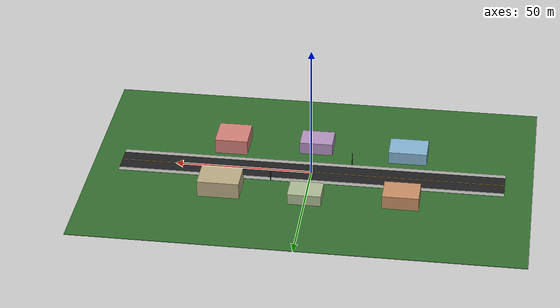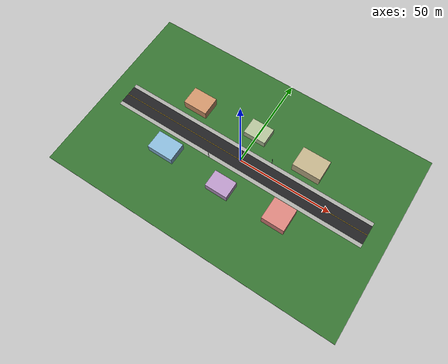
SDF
<?xml version="1.0"?>
<sdf version="1.9">
  <world name="aethon_residential">
    <!-- Keep PX4's validated world-level sensor references and timing. -->
    <physics name="ode" type="ode">
      <max_step_size>0.004</max_step_size>
      <real_time_factor>1.0</real_time_factor>
      <real_time_update_rate>250</real_time_update_rate>
    </physics>
    <gravity>0 0 -9.8</gravity>
    <magnetic_field>6e-06 2.3e-05 -4.2e-05</magnetic_field>
    <atmosphere type="adiabatic"/>
    <scene>
      <grid>false</grid>
      <ambient>0.45 0.45 0.45 1</ambient>
      <background>0.55 0.72 0.92 1</background>
      <shadows>true</shadows>
    </scene>
    <light name="sun" type="directional">
      <pose>0 0 25 0 0 0</pose>
      <cast_shadows>true</cast_shadows>
      <diffuse>0.9 0.9 0.85 1</diffuse>
      <specular>0.2 0.2 0.2 1</specular>
      <direction>-0.4 0.2 -0.9</direction>
    </light>

    <model name="ground">
      <static>true</static>
      <link name="link">
        <collision name="collision"><pose>0 0 -0.1 0 0 0</pose><geometry><box><size>160 100 0.2</size></box></geometry></collision>
        <visual name="visual"><pose>0 0 -0.1 0 0 0</pose><geometry><box><size>160 100 0.2</size></box></geometry><material><diffuse>0.20 0.43 0.18 1</diffuse></material></visual>
      </link>
    </model>
    <model name="residential_road">
      <static>true</static>
      <link name="link">
        <collision name="collision"><pose>0 0 0.01 0 0 0</pose><geometry><box><size>140 10 0.04</size></box></geometry></collision>
        <visual name="visual"><pose>0 0 0.01 0 0 0</pose><geometry><box><size>140 10 0.04</size></box></geometry><material><diffuse>0.12 0.12 0.13 1</diffuse></material></visual>
      </link>
    </model>
    <model name="north_sidewalk"><static>true</static><link name="link"><visual name="visual"><pose>0 6 0.03 0 0 0</pose><geometry><box><size>140 2 0.05</size></box></geometry><material><diffuse>0.65 0.65 0.63 1</diffuse></material></visual></link></model>
    <model name="south_sidewalk"><static>true</static><link name="link"><visual name="visual"><pose>0 -6 0.03 0 0 0</pose><geometry><box><size>140 2 0.05</size></box></geometry><material><diffuse>0.65 0.65 0.63 1</diffuse></material></visual></link></model>
    <model name="centre_line"><static>true</static><link name="link"><visual name="visual"><pose>0 0 0.04 0 0 0</pose><geometry><box><size>140 0.18 0.02</size></box></geometry><material><diffuse>0.95 0.72 0.10 1</diffuse></material></visual></link></model>

    <model name="house_northwest"><pose>-34 15 2.5 0 0 0</pose><static>true</static><link name="link"><collision name="collision"><geometry><box><size>13 10 5</size></box></geometry></collision><visual name="visual"><geometry><box><size>13 10 5</size></box></geometry><material><diffuse>0.78 0.56 0.40 1</diffuse></material></visual></link></model>
    <model name="house_northeast"><pose>31 15 3 0 0 0</pose><static>true</static><link name="link"><collision name="collision"><geometry><box><size>15 11 6</size></box></geometry></collision><visual name="visual"><geometry><box><size>15 11 6</size></box></geometry><material><diffuse>0.73 0.67 0.52 1</diffuse></material></visual></link></model>
    <model name="house_southwest"><pose>-34 -15 2.25 0 0 0</pose><static>true</static><link name="link"><collision name="collision"><geometry><box><size>14 10 4.5</size></box></geometry></collision><visual name="visual"><geometry><box><size>14 10 4.5</size></box></geometry><material><diffuse>0.52 0.70 0.82 1</diffuse></material></visual></link></model>
    <model name="house_southeast"><pose>31 -15 2.75 0 0 0</pose><static>true</static><link name="link"><collision name="collision"><geometry><box><size>12 12 5.5</size></box></geometry></collision><visual name="visual"><geometry><box><size>12 12 5.5</size></box></geometry><material><diffuse>0.82 0.50 0.47 1</diffuse></material></visual></link></model>
    <model name="house_north_far"><pose>0 17 2 0 0 0</pose><static>true</static><link name="link"><collision name="collision"><geometry><box><size>12 9 4</size></box></geometry></collision><visual name="visual"><geometry><box><size>12 9 4</size></box></geometry><material><diffuse>0.68 0.73 0.58 1</diffuse></material></visual></link></model>
    <model name="house_south_far"><pose>0 -17 2.25 0 0 0</pose><static>true</static><link name="link"><collision name="collision"><geometry><box><size>12 9 4.5</size></box></geometry></collision><visual name="visual"><geometry><box><size>12 9 4.5</size></box></geometry><material><diffuse>0.70 0.57 0.75 1</diffuse></material></visual></link></model>

    <model name="streetlight_east"><pose>14 7 2.5 0 0 0</pose><static>true</static><link name="link"><visual name="visual"><geometry><cylinder><radius>0.12</radius><length>5</length></cylinder></geometry><material><diffuse>0.20 0.20 0.22 1</diffuse></material></visual></link></model>
    <model name="streetlight_west"><pose>-14 -7 2.5 0 0 0</pose><static>true</static><link name="link"><visual name="visual"><geometry><cylinder><radius>0.12</radius><length>5</length></cylinder></geometry><material><diffuse>0.20 0.20 0.22 1</diffuse></material></visual></link></model>
    <spherical_coordinates>
      <surface_model>EARTH_WGS84</surface_model>
      <world_frame_orientation>ENU</world_frame_orientation>
      <latitude_deg>47.397971057728974</latitude_deg>
      <longitude_deg>8.546163739800146</longitude_deg>
      <elevation>0</elevation>
    </spherical_coordinates>
  </world>
</sdf>
